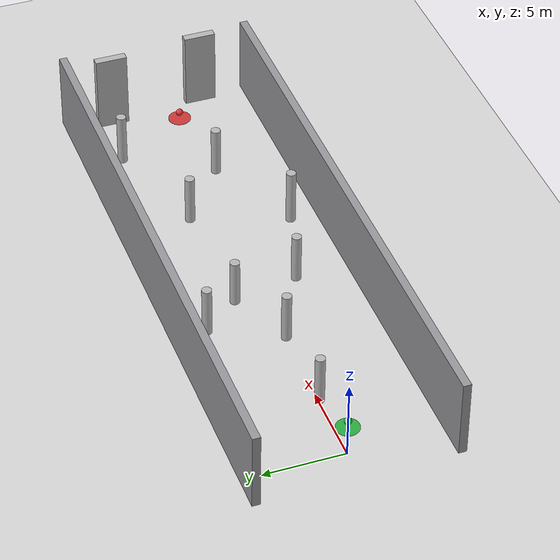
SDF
<sdf version="1.10">
 <world name="obstacle_avoidance">
  <physics type="ode">
   <max_step_size>0.0040000000000000001</max_step_size>
   <real_time_factor>1</real_time_factor>
   <real_time_update_rate>250</real_time_update_rate>
  </physics>
  <plugin name="gz::sim::systems::Physics" filename="gz-sim-physics-system"/>
  <plugin name="gz::sim::systems::UserCommands" filename="gz-sim-user-commands-system"/>
  <plugin name="gz::sim::systems::SceneBroadcaster" filename="gz-sim-scene-broadcaster-system"/>
  <plugin name="gz::sim::systems::Contact" filename="gz-sim-contact-system"/>
  <plugin name="gz::sim::systems::Imu" filename="gz-sim-imu-system"/>
  <plugin name="gz::sim::systems::AirPressure" filename="gz-sim-air-pressure-system"/>
  <plugin name="gz::sim::systems::AirSpeed" filename="gz-sim-air-speed-system"/>
  <plugin name="gz::sim::systems::ApplyLinkWrench" filename="gz-sim-apply-link-wrench-system"/>
  <plugin name="gz::sim::systems::NavSat" filename="gz-sim-navsat-system"/>
  <plugin name="gz::sim::systems::Magnetometer" filename="gz-sim-magnetometer-system"/>
  <plugin name="gz::sim::systems::Sensors" filename="gz-sim-sensors-system">
   <render_engine>ogre2</render_engine>
  </plugin>
  <plugin name="custom::OpticalFlowSystem" filename="libOpticalFlowSystem.so"/>
  <plugin name="custom::GstCameraSystem" filename="libGstCameraSystem.so"/>
  <gravity>0 0 -9.8000000000000007</gravity>
  <magnetic_field>6.0000000000000002e-06 2.3e-05 -4.1999999999999998e-05</magnetic_field>
  <atmosphere type="adiabatic"/>
  <scene>
   <grid>true</grid>
   <ambient>0.449999988 0.449999988 0.449999988 1</ambient>
   <background>0.74000001 0.769999981 0.819999993 1</background>
   <shadows>true</shadows>
  </scene>
  <spherical_coordinates>
   <surface_model>EARTH_WGS84</surface_model>
   <world_frame_orientation>ENU</world_frame_orientation>
   <latitude_deg>47.397971057728974</latitude_deg>
   <longitude_deg>8.5461637398001464</longitude_deg>
   <elevation>0</elevation>
   <heading_deg>0</heading_deg>
  </spherical_coordinates>
  <model name="ground_plane">
   <static>true</static>
   <link name="link">
    <collision name="collision">
     <geometry><plane><normal>0 0 1</normal><size>1 1</size></plane></geometry>
    </collision>
    <visual name="visual">
     <geometry><plane><normal>0 0 1</normal><size>120 120</size></plane></geometry>
     <material>
      <ambient>0.850000024 0.850000024 0.850000024 1</ambient>
      <diffuse>0.850000024 0.850000024 0.850000024 1</diffuse>
      <specular>0.400000006 0.400000006 0.400000006 1</specular>
     </material>
    </visual>
    <inertial>
     <mass>1</mass>
     <inertia><ixx>1</ixx><ixy>0</ixy><ixz>0</ixz><iyy>1</iyy><iyz>0</iyz><izz>1</izz></inertia>
    </inertial>
   </link>
  </model>
  <model name="lane_left_wall">
   <static>false</static>
   <pose>16 6 2.4999873987411871 -1.5452868411422002e-16 1.6520055580100191e-18 3.8614553100829292e-20</pose>
   <link name="link">
    <collision name="collision"><geometry><box><size>36 0.5 5</size></box></geometry></collision>
    <visual name="visual">
     <geometry><box><size>36 0.5 5</size></box></geometry>
     <material>
      <ambient>0.5 0.5 0.519999981 1</ambient>
      <diffuse>0.600000024 0.600000024 0.620000005 1</diffuse>
     </material>
    </visual>
    <inertial>
     <mass>1</mass>
     <inertia><ixx>1</ixx><ixy>0</ixy><ixz>0</ixz><iyy>1</iyy><iyz>0</iyz><izz>1</izz></inertia>
    </inertial>
   </link>
  </model>
  <model name="lane_right_wall">
   <static>false</static>
   <pose>16 -6 2.4999873987411871 -1.2772232356273819e-16 9.5017205798471489e-18 1.3757542690107612e-19</pose>
   <link name="link">
    <collision name="collision"><geometry><box><size>36 0.5 5</size></box></geometry></collision>
    <visual name="visual">
     <geometry><box><size>36 0.5 5</size></box></geometry>
     <material>
      <ambient>0.5 0.5 0.519999981 1</ambient>
      <diffuse>0.600000024 0.600000024 0.620000005 1</diffuse>
     </material>
    </visual>
    <inertial>
     <mass>1</mass>
     <inertia><ixx>1</ixx><ixy>0</ixy><ixz>0</ixz><iyy>1</iyy><iyz>0</iyz><izz>1</izz></inertia>
    </inertial>
   </link>
  </model>
  <model name="block_01">
   <static>false</static>
   <pose>4.4796299934387207 -0.0724058598279953 1.5999998682118997 -1.8106738411964041e-17 2.1194640537853516e-16 1.6120704908587505e-18</pose>
   <link name="link">
    <collision name="collision">
     <geometry>
      <cylinder><radius>0.29999999999999999</radius><length>3.2000000000000002</length></cylinder>
     </geometry>
    </collision>
    <visual name="visual">
     <geometry>
      <cylinder><radius>0.29999999999999999</radius><length>3.2000000000000002</length></cylinder>
     </geometry>
    </visual>
    <inertial>
     <mass>1</mass>
     <inertia><ixx>1</ixx><ixy>0</ixy><ixz>0</ixz><iyy>1</iyy><iyz>0</iyz><izz>1</izz></inertia>
    </inertial>
   </link>
  </model>
  <model name="block_02">
   <static>false</static>
   <pose>10 -0.13348494470119476 1.5999992089195469 -1.669824898327179e-17 1.377485077731623e-17 -9.8898548257508765e-21</pose>
   <link name="link">
    <collision name="collision">
     <geometry>
      <cylinder><radius>0.29999999999999999</radius><length>3.2000000000000002</length></cylinder>
     </geometry>
    </collision>
    <visual name="visual">
     <geometry>
      <cylinder><radius>0.29999999999999999</radius><length>3.2000000000000002</length></cylinder>
     </geometry>
    </visual>
    <inertial>
     <mass>1</mass>
     <inertia><ixx>1</ixx><ixy>0</ixy><ixz>0</ixz><iyy>1</iyy><iyz>0</iyz><izz>1</izz></inertia>
    </inertial>
   </link>
  </model>
  <model name="block_03">
   <static>false</static>
   <pose>14 1.6000000000000001 1.3745212547308292 -6.1451071560179809e-17 3.4332024127333754e-16 8.4290089988072183e-18</pose>
   <link name="link">
    <collision name="collision">
     <geometry>
      <cylinder><radius>0.29999999999999999</radius><length>3.2000000000000002</length></cylinder>
     </geometry>
    </collision>
    <visual name="visual">
     <geometry>
      <cylinder><radius>0.29999999999999999</radius><length>3.2000000000000002</length></cylinder>
     </geometry>
    </visual>
    <inertial>
     <mass>1</mass>
     <inertia><ixx>1</ixx><ixy>0</ixy><ixz>0</ixz><iyy>1</iyy><iyz>0</iyz><izz>1</izz></inertia>
    </inertial>
   </link>
  </model>
  <model name="block_04">
   <static>false</static>
   <pose>14.750100135803223 -2.5 1.5999992089198116 -2.0656513860806382e-16 1.4688859374014867e-16 -2.3029873712175797e-19</pose>
   <link name="link">
    <collision name="collision">
     <geometry>
      <cylinder><radius>0.29999999999999999</radius><length>3.2000000000000002</length></cylinder>
     </geometry>
    </collision>
    <visual name="visual">
     <geometry>
      <cylinder><radius>0.29999999999999999</radius><length>3.2000000000000002</length></cylinder>
     </geometry>
    </visual>
    <inertial>
     <mass>1</mass>
     <inertia><ixx>1</ixx><ixy>0</ixy><ixz>0</ixz><iyy>1</iyy><iyz>0</iyz><izz>1</izz></inertia>
    </inertial>
   </link>
  </model>
  <model name="block_05">
   <static>false</static>
   <pose>22 1.6795324087142944 1.5999992089195469 5.4561992511707939e-17 3.2279413442190689e-17 2.170144615709694e-19</pose>
   <link name="link">
    <collision name="collision">
     <geometry>
      <cylinder><radius>0.29999999999999999</radius><length>3.2000000000000002</length></cylinder>
     </geometry>
    </collision>
    <visual name="visual">
     <geometry>
      <cylinder><radius>0.29999999999999999</radius><length>3.2000000000000002</length></cylinder>
     </geometry>
    </visual>
    <inertial>
     <mass>1</mass>
     <inertia><ixx>1</ixx><ixy>0</ixy><ixz>0</ixz><iyy>1</iyy><iyz>0</iyz><izz>1</izz></inertia>
    </inertial>
   </link>
  </model>
  <model name="block_06">
   <static>false</static>
   <pose>26 -1.3608700037002563 1.5999991511317544 -8.3290352971152431e-17 1.2305885476985304e-16 -1.7863564073189563e-18</pose>
   <link name="link">
    <collision name="collision">
     <geometry>
      <cylinder><radius>0.29999999999999999</radius><length>3.2000000000000002</length></cylinder>
     </geometry>
    </collision>
    <visual name="visual">
     <geometry>
      <cylinder><radius>0.29999999999999999</radius><length>3.2000000000000002</length></cylinder>
     </geometry>
    </visual>
    <inertial>
     <mass>1</mass>
     <inertia><ixx>1</ixx><ixy>0</ixy><ixz>0</ixz><iyy>1</iyy><iyz>0</iyz><izz>1</izz></inertia>
    </inertial>
   </link>
  </model>
  <model name="cyl_01">
   <static>false</static>
   <pose>12 4 1.5999992086633334 2.2687360345456637e-18 4.5657228771581074e-18 -1.896154608907737e-19</pose>
   <link name="link">
    <collision name="collision">
     <geometry>
      <cylinder><radius>0.29999999999999999</radius><length>3.2000000000000002</length></cylinder>
     </geometry>
    </collision>
    <visual name="visual">
     <geometry>
      <cylinder><radius>0.29999999999999999</radius><length>3.2000000000000002</length></cylinder>
     </geometry>
    </visual>
    <inertial>
     <mass>1</mass>
     <inertia><ixx>1</ixx><ixy>0</ixy><ixz>0</ixz><iyy>1</iyy><iyz>0</iyz><izz>1</izz></inertia>
    </inertial>
   </link>
  </model>
  <model name="cyl_02">
   <static>false</static>
   <pose>20 -4.0999999999999996 1.7999992086633334 -5.95015447457351e-18 -7.1830272029298781e-18 8.102279845254366e-20</pose>
   <link name="link">
    <collision name="collision">
     <geometry>
      <cylinder><radius>0.29999999999999999</radius><length>3.6000000000000001</length></cylinder>
     </geometry>
    </collision>
    <visual name="visual">
     <geometry>
      <cylinder><radius>0.29999999999999999</radius><length>3.6000000000000001</length></cylinder>
     </geometry>
    </visual>
    <inertial>
     <mass>1</mass>
     <inertia><ixx>1</ixx><ixy>0</ixy><ixz>0</ixz><iyy>1</iyy><iyz>0</iyz><izz>1</izz></inertia>
    </inertial>
   </link>
  </model>
  <model name="cyl_03">
   <static>false</static>
   <pose>29 3.7999999999999998 1.6999992086633333 2.9183300555717811e-18 3.6794603956307752e-18 6.9962869253696579e-20</pose>
   <link name="link">
    <collision name="collision">
     <geometry>
      <cylinder><radius>0.29999999999999999</radius><length>3.3999999999999999</length></cylinder>
     </geometry>
    </collision>
    <visual name="visual">
     <geometry>
      <cylinder><radius>0.29999999999999999</radius><length>3.3999999999999999</length></cylinder>
     </geometry>
    </visual>
    <inertial>
     <mass>1</mass>
     <inertia><ixx>1</ixx><ixy>0</ixy><ixz>0</ixz><iyy>1</iyy><iyz>0</iyz><izz>1</izz></inertia>
    </inertial>
   </link>
  </model>
  <model name="start_marker">
   <static>true</static>
   <pose>0.046363700181245804 0 1.9979764223098755 0 0 0</pose>
   <link name="link">
    <gravity>false</gravity>
    <kinematic>true</kinematic>
    <visual name="base_ring">
     <geometry>
      <cylinder><radius>0.69999999999999996</radius><length>0.040000000000000001</length></cylinder>
     </geometry>
     <material>
      <ambient>0.100000001 0.699999988 0.200000003 0.850000024</ambient>
      <diffuse>0.100000001 0.699999988 0.200000003 0.850000024</diffuse>
      <specular>0.200000003 0.200000003 0.200000003 1</specular>
     </material>
    </visual>
    <visual name="center_sphere">
     <pose>0 0 0.45000000000000001 0 0 0</pose>
     <geometry><sphere><radius>0.22</radius></sphere></geometry>
     <material>
      <ambient>0.100000001 0.850000024 0.25 1</ambient>
      <diffuse>0.100000001 0.850000024 0.25 1</diffuse>
      <specular>0.300000012 0.300000012 0.300000012 1</specular>
     </material>
    </visual>
    <inertial>
     <mass>1</mass>
     <inertia><ixx>1</ixx><ixy>0</ixy><ixz>0</ixz><iyy>1</iyy><iyz>0</iyz><izz>1</izz></inertia>
    </inertial>
   </link>
  </model>
  <model name="goal_marker">
   <static>true</static>
   <pose>28.969200134277344 0 2.378093957901001 0 0 0</pose>
   <link name="link">
    <gravity>false</gravity>
    <kinematic>true</kinematic>
    <visual name="base_ring">
     <geometry>
      <cylinder><radius>0.69999999999999996</radius><length>0.040000000000000001</length></cylinder>
     </geometry>
     <material>
      <ambient>0.850000024 0.150000006 0.150000006 0.850000024</ambient>
      <diffuse>0.850000024 0.150000006 0.150000006 0.850000024</diffuse>
      <specular>0.200000003 0.200000003 0.200000003 1</specular>
     </material>
    </visual>
    <visual name="center_sphere">
     <pose>0 0 0.45000000000000001 0 0 0</pose>
     <geometry><sphere><radius>0.22</radius></sphere></geometry>
     <material>
      <ambient>0.949999988 0.200000003 0.200000003 1</ambient>
      <diffuse>0.949999988 0.200000003 0.200000003 1</diffuse>
      <specular>0.300000012 0.300000012 0.300000012 1</specular>
     </material>
    </visual>
    <inertial>
     <mass>1</mass>
     <inertia><ixx>1</ixx><ixy>0</ixy><ixz>0</ixz><iyy>1</iyy><iyz>0</iyz><izz>1</izz></inertia>
    </inertial>
   </link>
  </model>
  <model name="goal_gate_left">
   <static>false</static>
   <pose>33 3.2053179740905762 2.4999999991915041 -2.5901642554155075e-20 -1.4899924435191024e-20 1.9900706892159452e-21</pose>
   <link name="link">
    <collision name="collision"><geometry><box><size>0.5 2 5</size></box></geometry></collision>
    <visual name="visual"><geometry><box><size>0.5 2 5</size></box></geometry></visual>
    <inertial>
     <mass>1</mass>
     <inertia><ixx>1</ixx><ixy>0</ixy><ixz>0</ixz><iyy>1</iyy><iyz>0</iyz><izz>1</izz></inertia>
    </inertial>
   </link>
  </model>
  <model name="goal_gate_right">
   <static>false</static>
   <pose>33.551300048828125 -2.8280651569366455 2.4999999991915041 -4.1298712595037983e-22 3.2271081178646261e-21 -1.0861368361491175e-20</pose>
   <link name="link">
    <collision name="collision"><geometry><box><size>0.5 2 5</size></box></geometry></collision>
    <visual name="visual"><geometry><box><size>0.5 2 5</size></box></geometry></visual>
    <inertial>
     <mass>1</mass>
     <inertia><ixx>1</ixx><ixy>0</ixy><ixz>0</ixz><iyy>1</iyy><iyz>0</iyz><izz>1</izz></inertia>
    </inertial>
   </link>
  </model>
  <light name="sunUTC" type="directional">
   <pose>0 0 500 0 0 0</pose>
   <intensity>1</intensity>
   <direction>0.001 0.625 -0.78000000000000003</direction>
   <diffuse>0.899999976 0.899999976 0.899999976 1</diffuse>
   <specular>0.25 0.25 0.25 1</specular>
   <attenuation><range>2000</range><linear>0</linear><constant>1</constant><quadratic>0</quadratic></attenuation>
   <spot><inner_angle>0</inner_angle><outer_angle>0</outer_angle><falloff>0</falloff></spot>
  </light>
 </world>
</sdf>
